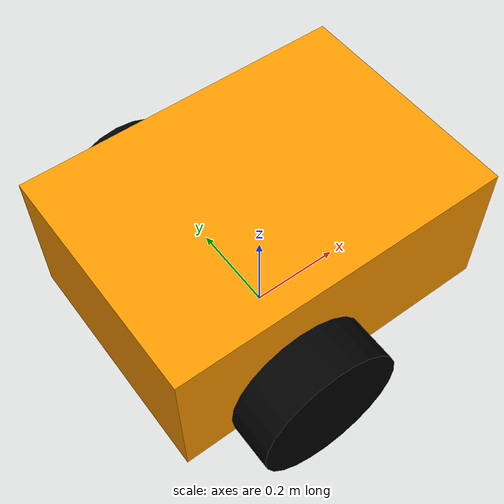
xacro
<?xml version="1.0"?>
<robot name="edges_robot" xmlns:xacro="http://www.ros.org/wiki/xacro">
    <xacro:include filename="materials.xacro" />
    <xacro:include filename="base.xacro" />
    <xacro:include filename="wheels.xacro" />

    <xacro:wheel prefix="left" y_position="0.3" />
    <xacro:wheel prefix="right" y_position="-0.3" />

    <gazebo>
        <plugin
            filename="libignition-gazebo-diff-drive-system.so"
            name="ignition::gazebo::systems::DiffDrive">
            <left_joint>left_wheel_joint</left_joint>
            <right_joint>right_wheel_joint</right_joint>
            <wheel_separation>0.6</wheel_separation>
            <wheel_radius>0.15</wheel_radius>
            <topic>cmd_vel</topic>
            <odom_topic>wheel_odom</odom_topic>
            <frame_id>odom</frame_id>
            <child_frame_id>base_link</child_frame_id>
            <odom_publish_frequency>30</odom_publish_frequency>
            <max_linear_velocity>5.0</max_linear_velocity>
            <max_angular_velocity>2.0</max_angular_velocity>
        </plugin>
    </gazebo>

    <gazebo>
        <plugin
            filename="libignition-gazebo-odometry-publisher-system.so"
            name="ignition::gazebo::systems::OdometryPublisher">
            <dimensions>3</dimensions>
            <odom_publish_frequency>100</odom_publish_frequency>
        </plugin>
    </gazebo>
</robot>

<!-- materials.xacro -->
<robot xmlns:xacro="http://www.ros.org/wiki/xacro">
    <material name="orange">
        <color rgba="1 0.6 0 1" />
    </material>
    <material name="black">
        <color rgba="0 0 0 1" />
    </material>
    <material name="gray">
        <color rgba="0.5 0.5 0.5 1" />
    </material>
</robot>

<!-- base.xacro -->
<robot xmlns:xacro="http://www.ros.org/wiki/xacro">
    <xacro:property name="base_length" value="0.7" />
    <xacro:property name="base_width" value="0.5" />
    <xacro:property name="base_height" value="0.3" />
    <xacro:property name="caster_radius" value="0.08" />

    <link name="base_link">
        <inertial>
            <origin xyz="0.08 0 0.17" rpy="0 0 0" />
            <mass value="10" />
            <inertia ixx="0.283333" ixy="0" ixz="0" iyy="0.483333" iyz="0" izz="0.616667" />
        </inertial>
        <visual>
            <geometry>
                <box size="${base_length} ${base_width} ${base_height}" />
            </geometry>
            <origin xyz="0 0 0.25" rpy="0 0 0" />
            <material name="orange" />
        </visual>
        <collision>
            <geometry>
                <box size="${base_length} ${base_width} ${base_height}" />
            </geometry>
            <origin xyz="0 0 0.25" rpy="0 0 0" />
        </collision>
        <collision name="impact_bumper">
            <geometry>
                <box size="0.8 0.6 0.15" />
            </geometry>
            <origin xyz="0 0 0.475" rpy="0 0 0" />
        </collision>
    </link>

    <link name="front_caster">
        <inertial>
            <origin xyz="0 0 0" rpy="0 0 0" />
            <mass value="0.5" />
            <inertia ixx="0.00128" ixy="0" ixz="0" iyy="0.00128" iyz="0" izz="0.00128" />
        </inertial>
        <visual>
            <geometry>
                <sphere radius="${caster_radius}" />
            </geometry>
            <origin xyz="0 0 0" rpy="0 0 0" />
            <material name="gray" />
        </visual>
        <collision>
            <geometry>
                <sphere radius="${caster_radius}" />
            </geometry>
            <origin xyz="0 0 0" rpy="0 0 0" />
        </collision>
    </link>

    <joint name="front_caster_joint" type="fixed">
        <origin xyz="0.25 0 ${caster_radius}" rpy="0 0 0" />
        <parent link="base_link" />
        <child link="front_caster" />
    </joint>

    <gazebo reference="front_caster">
        <mu1>0.05</mu1>
        <mu2>0.05</mu2>
    </gazebo>
</robot>

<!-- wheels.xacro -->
<robot xmlns:xacro="http://www.ros.org/wiki/xacro">
    <xacro:property name="wheel_radius" value="0.15" />
    <xacro:property name="wheel_width" value="0.1" />

    <xacro:macro name="wheel" params="prefix y_position">
        <link name="${prefix}_wheel">
            <inertial>
                <origin xyz="0 0 0" rpy="0 0 0" />
                <mass value="1" />
                <inertia ixx="0.006458" ixy="0" ixz="0" iyy="0.01125" iyz="0" izz="0.006458" />
            </inertial>
            <visual>
                <geometry>
                    <cylinder radius="${wheel_radius}" length="${wheel_width}" />
                </geometry>
                <origin xyz="0 0 0" rpy="1.5708 0 0" />
                <material name="black" />
            </visual>
            <collision>
                <geometry>
                    <cylinder radius="${wheel_radius}" length="${wheel_width}" />
                </geometry>
                <origin xyz="0 0 0" rpy="1.5708 0 0" />
            </collision>
        </link>

        <joint name="${prefix}_wheel_joint" type="continuous">
            <origin xyz="-0.1 ${y_position} ${wheel_radius}" rpy="0 0 0" />
            <parent link="base_link" />
            <child link="${prefix}_wheel" />
            <axis xyz="0 1 0" />
            <limit effort="100" velocity="40" />
        </joint>

        <gazebo reference="${prefix}_wheel">
            <mu1>5.0</mu1>
            <mu2>5.0</mu2>
        </gazebo>
    </xacro:macro>
</robot>
